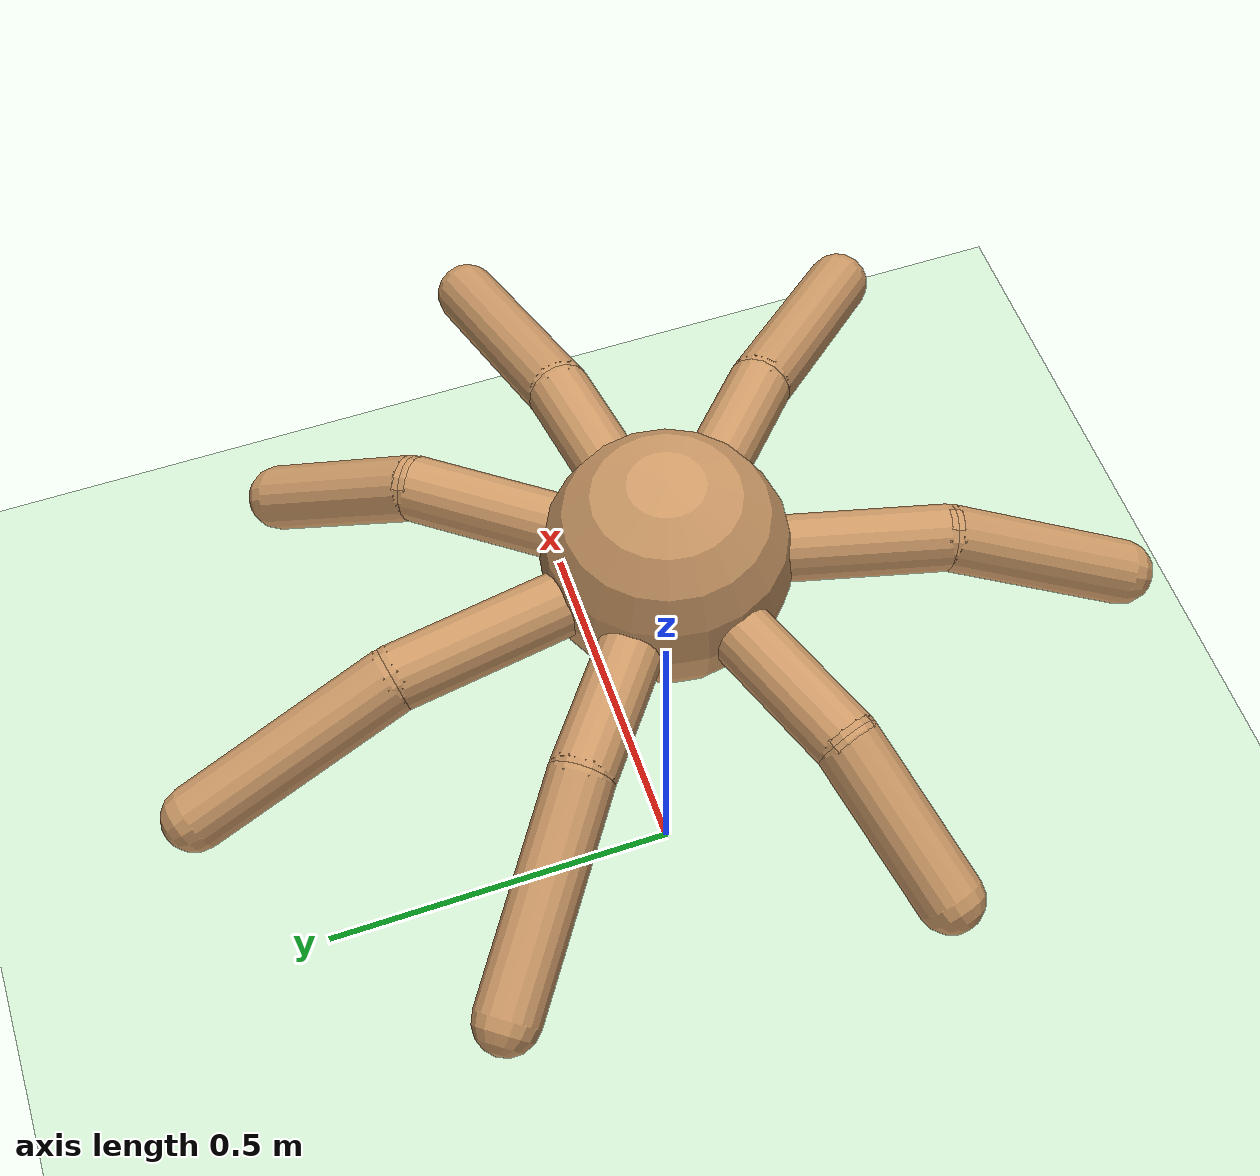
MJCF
<mujoco model="mutant_ant">
  <compiler angle="degree" coordinate="local" inertiafromgeom="true"/>
  <option integrator="RK4" timestep="0.01"/>
  <default>
    <joint armature="1" damping="1" limited="true"/>
    <geom conaffinity="1" condim="3" density="5.0" friction="1 0.5 0.5" margin="0.01" rgba="0.8 0.6 0.4 1"/>
  </default>
  <asset>
    <texture builtin="checker" height="512" name="texplane" rgb1=".2 .3 .4" rgb2=".1 0.15 0.2" type="2d" width="512"/>
    <material name="MatPlane" reflectance="0.5" shininess="1" specular="1" texrepeat="60 60" texture="texplane"/>
  </asset>
  <worldbody>
    <light cutoff="100" diffuse="1 1 1" dir="-0 0 -1.3" directional="true" exponent="1" pos="0 0 1.3" specular=".1 .1 .1"/>
    <geom conaffinity="1" condim="3" material="MatPlane" name="floor" pos="0 0 0" rgba="0.8 0.9 0.8 1" size="40 40 40" type="plane"/>
    <body name="torso" pos="0 0 0.714">
      <camera name="track" mode="trackcom" pos="0 -3 2.0" euler="60 0 0"/>
      <freejoint name="root"/>
      <geom name="torso_geom" pos="0 0 0" size="0.15" type="sphere"/>
      <body name="leg_0" pos="0 0 0" euler="0 0 9.169">
        <geom fromto="0.0 0.0 0.0 0.1 0.0 0.0" name="aux_0_geom" size="0.04" type="capsule"/>
        <body name="leg_0_aux" pos="0.1 0.0 0">
          <joint axis="0 0 1" name="hip_0" pos="0.0 0.0 0.0" range="-24.169 20.900" type="hinge"/>
          <geom fromto="0.0 0.0 0.0 0.182 0.0 0.0" name="thigh_0_geom" size="0.04" type="capsule"/>
          <body pos="0.182 0.0 0" name="leg_0_ankle">
            <joint axis="0 1 0" name="ankle_0" pos="0.0 0.0 0.0" range="29.091 70.088" type="hinge"/>
            <geom fromto="0.0 0.0 0.0 0.275 0.0 -0.1" name="calf_0_geom" size="0.04" type="capsule"/>
          </body>
        </body>
      </body>
      <body name="leg_1" pos="0 0 0" euler="0 0 52.720">
        <geom fromto="0.0 0.0 0.0 0.1 0.0 0.0" name="aux_1_geom" size="0.04" type="capsule"/>
        <body name="leg_1_aux" pos="0.1 0.0 0">
          <joint axis="0 0 1" name="hip_1" pos="0.0 0.0 0.0" range="-22.750 38.229" type="hinge"/>
          <geom fromto="0.0 0.0 0.0 0.221 0.0 0.0" name="thigh_1_geom" size="0.04" type="capsule"/>
          <body pos="0.221 0.0 0" name="leg_1_ankle">
            <joint axis="0 1 0" name="ankle_1" pos="0.0 0.0 0.0" range="28.593 60.263" type="hinge"/>
            <geom fromto="0.0 0.0 0.0 0.187 0.0 -0.1" name="calf_1_geom" size="0.04" type="capsule"/>
          </body>
        </body>
      </body>
      <body name="leg_2" pos="0 0 0" euler="0 0 99.274">
        <geom fromto="0.0 0.0 0.0 0.1 0.0 0.0" name="aux_2_geom" size="0.04" type="capsule"/>
        <body name="leg_2_aux" pos="0.1 0.0 0">
          <joint axis="0 0 1" name="hip_2" pos="0.0 0.0 0.0" range="-31.634 33.828" type="hinge"/>
          <geom fromto="0.0 0.0 0.0 0.254 0.0 0.0" name="thigh_2_geom" size="0.04" type="capsule"/>
          <body pos="0.254 0.0 0" name="leg_2_ankle">
            <joint axis="0 1 0" name="ankle_2" pos="0.0 0.0 0.0" range="33.758 71.144" type="hinge"/>
            <geom fromto="0.0 0.0 0.0 0.260 0.0 -0.1" name="calf_2_geom" size="0.04" type="capsule"/>
          </body>
        </body>
      </body>
      <body name="leg_3" pos="0 0 0" euler="0 0 142.950">
        <geom fromto="0.0 0.0 0.0 0.1 0.0 0.0" name="aux_3_geom" size="0.04" type="capsule"/>
        <body name="leg_3_aux" pos="0.1 0.0 0">
          <joint axis="0 0 1" name="hip_3" pos="0.0 0.0 0.0" range="-31.634 33.828" type="hinge"/>
          <geom fromto="0.0 0.0 0.0 0.208 0.0 0.0" name="thigh_3_geom" size="0.04" type="capsule"/>
          <body pos="0.208 0.0 0" name="leg_3_ankle">
            <joint axis="0 1 0" name="ankle_3" pos="0.0 0.0 0.0" range="41.239 72.022" type="hinge"/>
            <geom fromto="0.0 0.0 0.0 0.260 0.0 -0.1" name="calf_3_geom" size="0.04" type="capsule"/>
          </body>
        </body>
      </body>
      <body name="leg_4" pos="0 0 0" euler="0 0 199.439">
        <geom fromto="0.0 0.0 0.0 0.1 0.0 0.0" name="aux_4_geom" size="0.04" type="capsule"/>
        <body name="leg_4_aux" pos="0.1 0.0 0">
          <joint axis="0 0 1" name="hip_4" pos="0.0 0.0 0.0" range="-25.651 33.128" type="hinge"/>
          <geom fromto="0.0 0.0 0.0 0.221 0.0 0.0" name="thigh_4_geom" size="0.04" type="capsule"/>
          <body pos="0.221 0.0 0" name="leg_4_ankle">
            <joint axis="0 1 0" name="ankle_4" pos="0.0 0.0 0.0" range="28.593 60.263" type="hinge"/>
            <geom fromto="0.0 0.0 0.0 0.187 0.0 -0.1" name="calf_4_geom" size="0.04" type="capsule"/>
          </body>
        </body>
      </body>
      <body name="leg_5" pos="0 0 0" euler="0 0 255.382">
        <geom fromto="0.0 0.0 0.0 0.1 0.0 0.0" name="aux_5_geom" size="0.04" type="capsule"/>
        <body name="leg_5_aux" pos="0.1 0.0 0">
          <joint axis="0 0 1" name="hip_5" pos="0.0 0.0 0.0" range="-34.138 25.559" type="hinge"/>
          <geom fromto="0.0 0.0 0.0 0.234 0.0 0.0" name="thigh_5_geom" size="0.04" type="capsule"/>
          <body pos="0.234 0.0 0" name="leg_5_ankle">
            <joint axis="0 1 0" name="ankle_5" pos="0.0 0.0 0.0" range="32.625 66.910" type="hinge"/>
            <geom fromto="0.0 0.0 0.0 0.223 0.0 -0.1" name="calf_5_geom" size="0.04" type="capsule"/>
          </body>
        </body>
      </body>
      <body name="leg_6" pos="0 0 0" euler="0 0 316.645">
        <geom fromto="0.0 0.0 0.0 0.1 0.0 0.0" name="aux_6_geom" size="0.04" type="capsule"/>
        <body name="leg_6_aux" pos="0.1 0.0 0">
          <joint axis="0 0 1" name="hip_6" pos="0.0 0.0 0.0" range="-24.389 27.349" type="hinge"/>
          <geom fromto="0.0 0.0 0.0 0.182 0.0 0.0" name="thigh_6_geom" size="0.04" type="capsule"/>
          <body pos="0.182 0.0 0" name="leg_6_ankle">
            <joint axis="0 1 0" name="ankle_6" pos="0.0 0.0 0.0" range="29.091 70.088" type="hinge"/>
            <geom fromto="0.0 0.0 0.0 0.275 0.0 -0.1" name="calf_6_geom" size="0.04" type="capsule"/>
          </body>
        </body>
      </body>
    </body>
  </worldbody>
  <actuator>
    <motor ctrllimited="true" ctrlrange="-1.0 1.0" joint="hip_0" gear="30"/>
    <motor ctrllimited="true" ctrlrange="-1.0 1.0" joint="ankle_0" gear="30"/>
    <motor ctrllimited="true" ctrlrange="-1.0 1.0" joint="hip_1" gear="30"/>
    <motor ctrllimited="true" ctrlrange="-1.0 1.0" joint="ankle_1" gear="30"/>
    <motor ctrllimited="true" ctrlrange="-1.0 1.0" joint="hip_2" gear="30"/>
    <motor ctrllimited="true" ctrlrange="-1.0 1.0" joint="ankle_2" gear="30"/>
    <motor ctrllimited="true" ctrlrange="-1.0 1.0" joint="hip_3" gear="30"/>
    <motor ctrllimited="true" ctrlrange="-1.0 1.0" joint="ankle_3" gear="30"/>
    <motor ctrllimited="true" ctrlrange="-1.0 1.0" joint="hip_4" gear="30"/>
    <motor ctrllimited="true" ctrlrange="-1.0 1.0" joint="ankle_4" gear="30"/>
    <motor ctrllimited="true" ctrlrange="-1.0 1.0" joint="hip_5" gear="30"/>
    <motor ctrllimited="true" ctrlrange="-1.0 1.0" joint="ankle_5" gear="30"/>
    <motor ctrllimited="true" ctrlrange="-1.0 1.0" joint="hip_6" gear="30"/>
    <motor ctrllimited="true" ctrlrange="-1.0 1.0" joint="ankle_6" gear="30"/>
  </actuator>
</mujoco>
